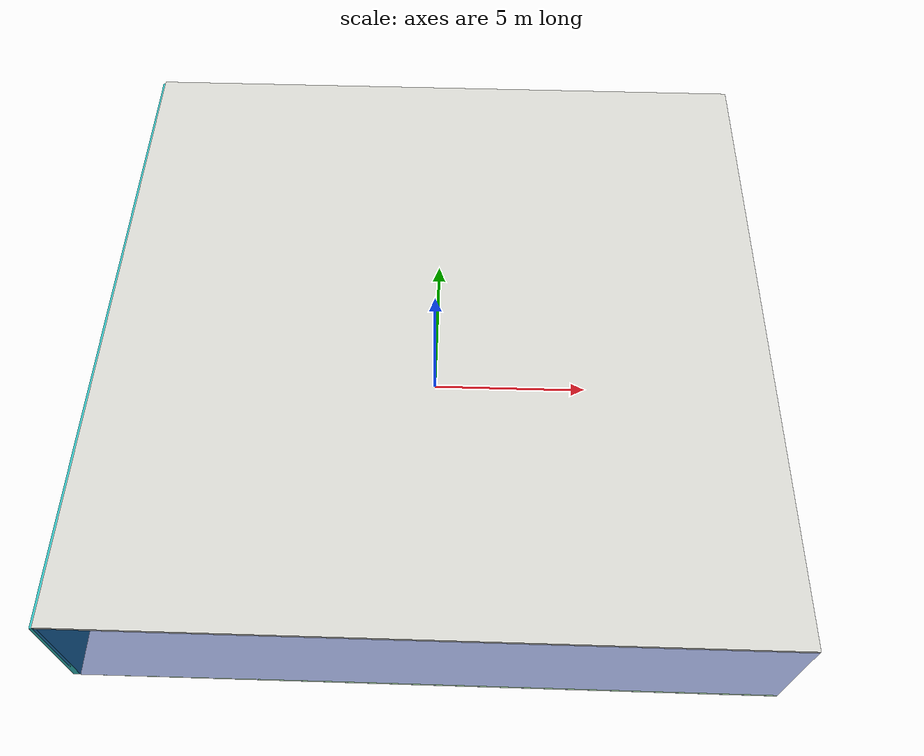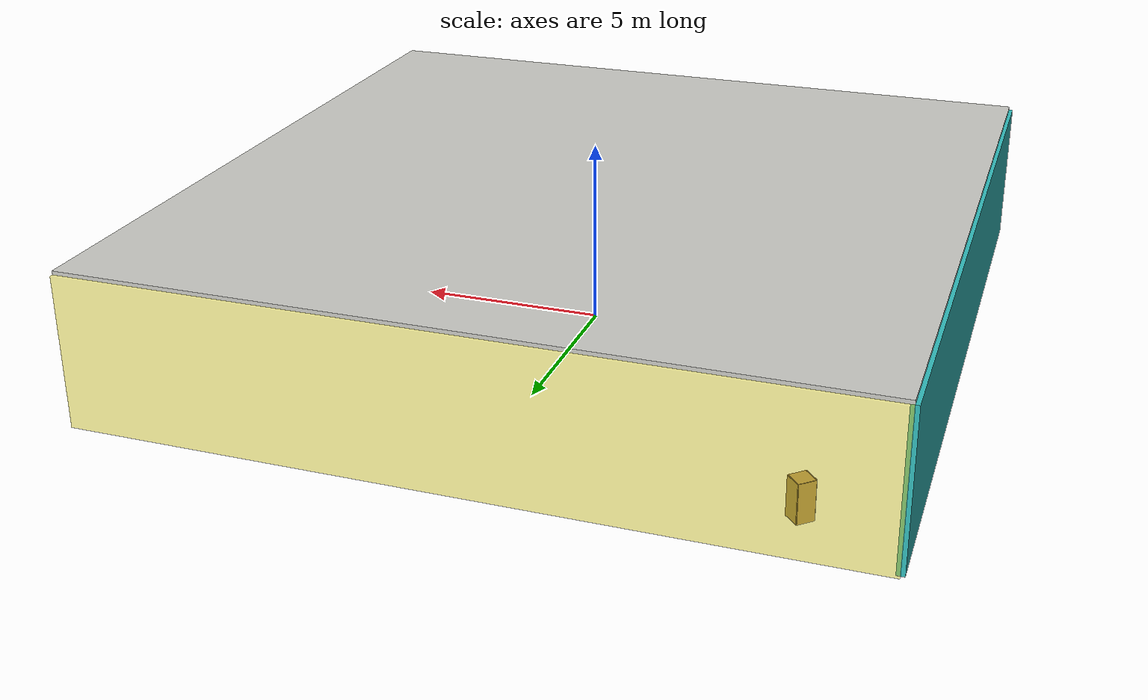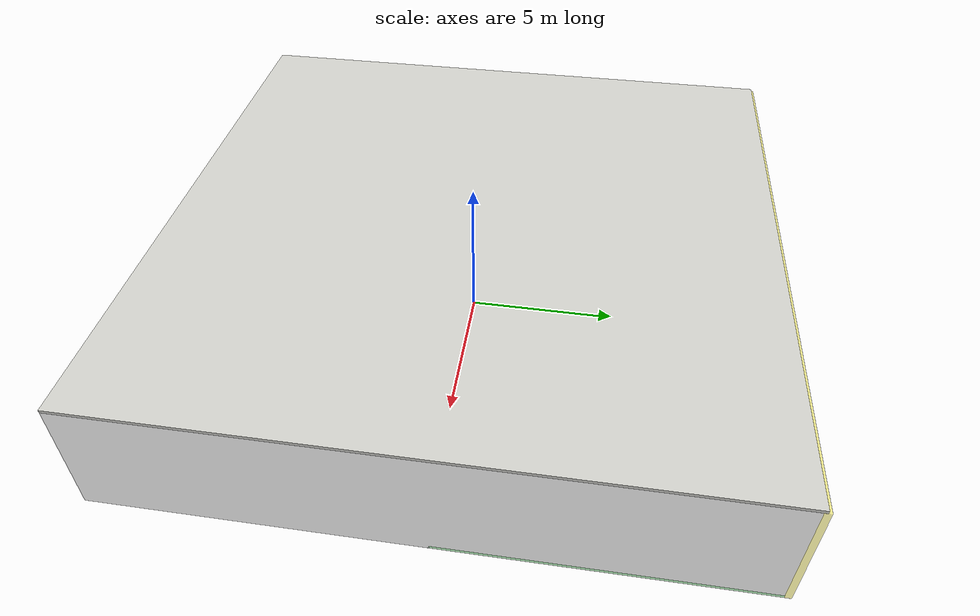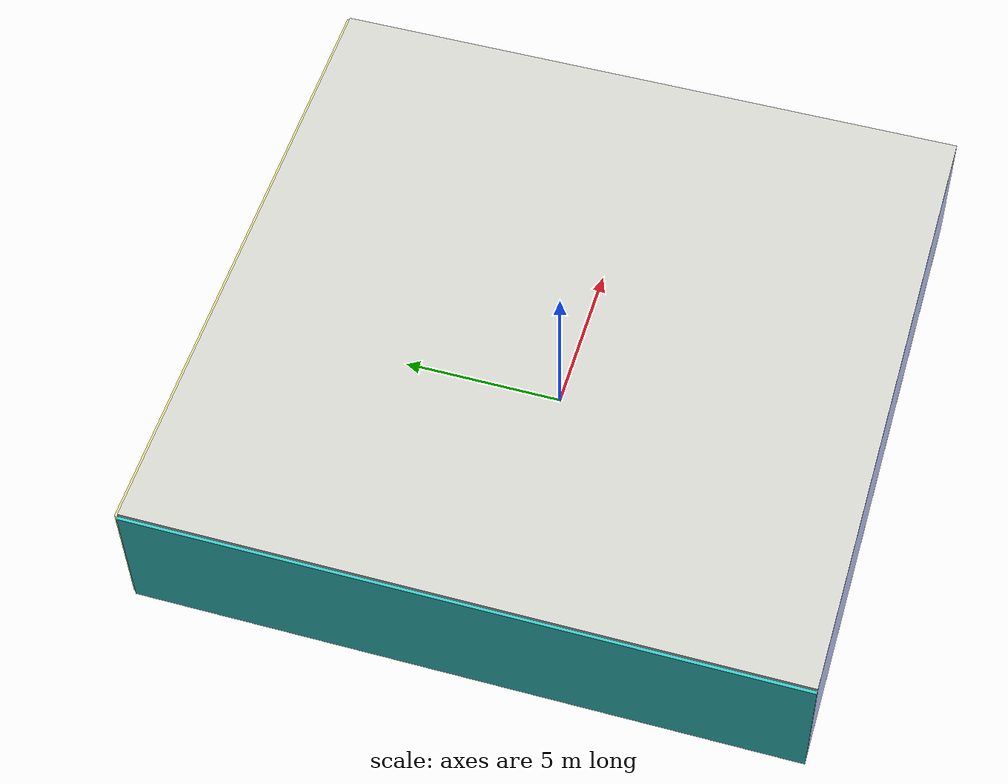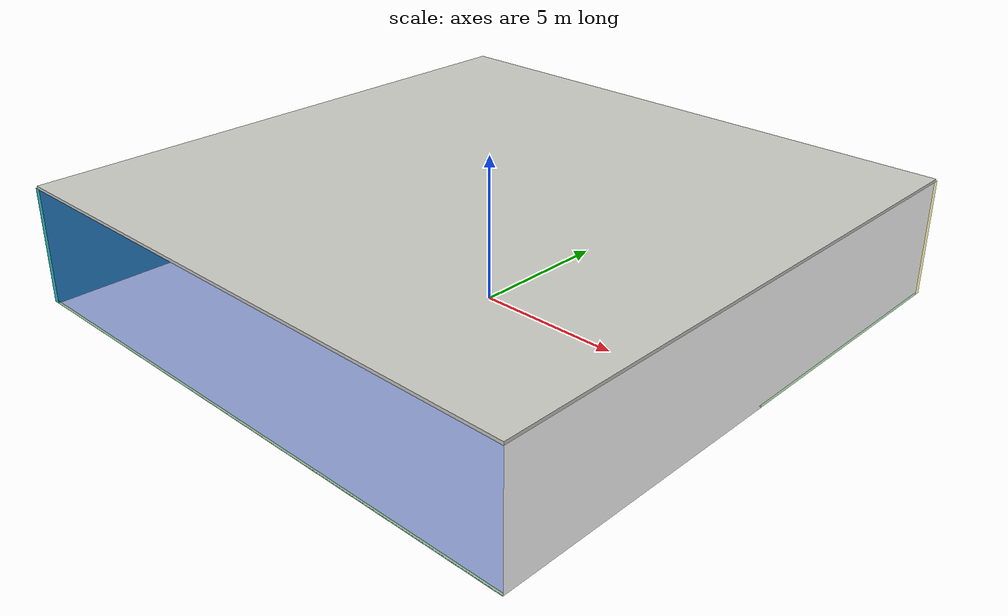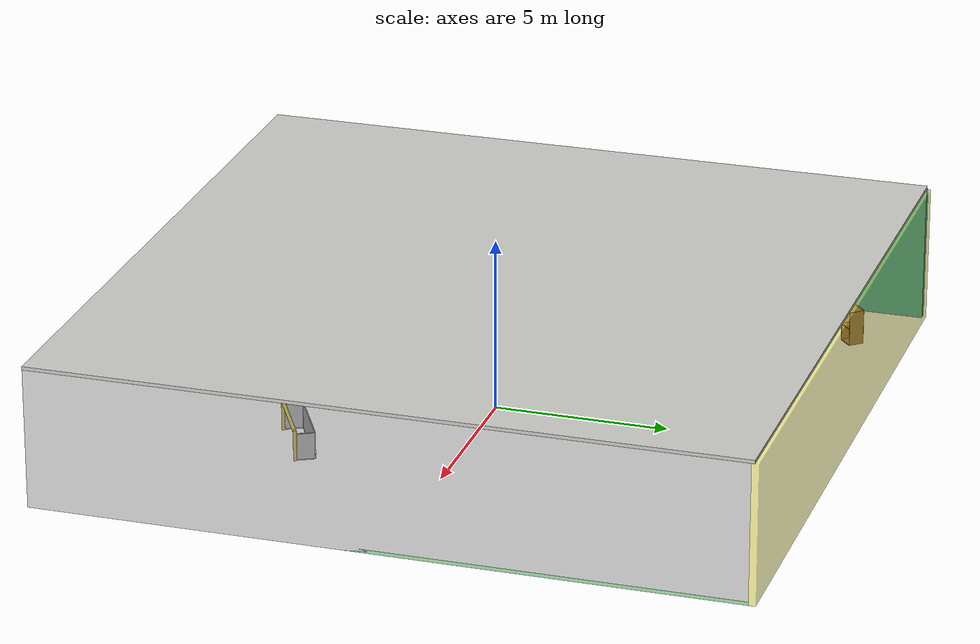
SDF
<sdf version="1.4">
 <world name="default">
  <physics type="ode">
   <max_step_size>0.001</max_step_size>
   <real_time_factor>1</real_time_factor>
   <real_time_update_rate>1000</real_time_update_rate>
   <gravity>0 0 -9.8</gravity>
  </physics>
  <scene><ambient>0.4 0.4 0.4 1</ambient><background>0.7 0.7 0.7 1</background><shadows>1</shadows></scene>
  <model name="Surrounding">
   <static>1</static>
   <link name="Ceiling">
    <collision name="Ceiling_Collision"><geometry><box><size>20 20 0.1</size></box></geometry></collision>
    <visual name="Ceiling_Visual">
     <geometry><box><size>20 20 0.1</size></box></geometry>
     <material>
      <script><uri>file://media/materials/scripts/gazebo.material</uri><name>Gazebo/CeilingTiled</name></script>
     </material>
    </visual>
    <pose>0 0 4.05 0 0 0</pose>
   </link>
   <link name="Wall_South">
    <collision name="Wall_South_Collision">
     <geometry><box><size>20 0 4</size></box></geometry>
     <pose>0 0 2 0 -0 0</pose>
    </collision>
    <visual name="Wall_South_Visual">
     <pose>0 0 2 0 -0 0</pose>
     <geometry><box><size>20 0 4</size></box></geometry>
     <material>
      <script><uri>file://media/materials/scripts/gazebo.material</uri><name>Gazebo/BlueTransparent</name></script>
     </material>
    </visual>
    <velocity_decay><linear>0</linear><angular>0</angular></velocity_decay>
    <pose>0 -10 0 0 -0 0</pose>
   </link>
   <link name="Wall_East">
    <collision name="Wall_21_Collision">
     <geometry><box><size>20 0 4</size></box></geometry>
     <pose>0 0 2 0 -0 0</pose>
    </collision>
    <visual name="Wall_21_Visual">
     <pose>0 0 2 0 -0 0</pose>
     <geometry><box><size>20 0 4</size></box></geometry>
     <material>
      <script><uri>file://media/materials/scripts/gazebo.material</uri><name>Gazebo/GreyTransparent</name></script>
     </material>
    </visual>
    <velocity_decay><linear>0</linear><angular>0</angular></velocity_decay>
    <pose>10 0 0 0 -0 1.5708</pose>
   </link>
   <link name="Wall_North">
    <collision name="Wall_22_Collision">
     <geometry><box><size>20 0.2 4</size></box></geometry>
     <pose>0 0 2 0 -0 0</pose>
    </collision>
    <visual name="Wall_22_Visual">
     <pose>0 0 2 0 -0 0</pose>
     <geometry><box><size>20 0.2 4</size></box></geometry>
     <material>
      <script>
       <uri>file://media/materials/scripts/gazebo.material</uri>
       <name>Gazebo/YellowTransparent</name>
      </script>
     </material>
    </visual>
    <velocity_decay><linear>0</linear><angular>0</angular></velocity_decay>
    <pose>0 10 0 0 -0 0</pose>
   </link>
   <link name="Wall_West">
    <collision name="Wall_23_Collision">
     <geometry><box><size>20 0.2 4</size></box></geometry>
     <pose>0 0 2 0 -0 0</pose>
    </collision>
    <visual name="Wall_23_Visual">
     <pose>0 0 2 0 -0 0</pose>
     <geometry><box><size>20 0.2 4</size></box></geometry>
     <material>
      <script>
       <uri>file://media/materials/scripts/gazebo.material</uri>
       <name>Gazebo/TurquoiseGlowOutline</name>
      </script>
     </material>
    </visual>
    <velocity_decay><linear>0</linear><angular>0</angular></velocity_decay>
    <pose>-10 0 0 0 0 -1.5708</pose>
   </link>
   <link name="Ground_link">
    <collision name="collision">
     <pose>0 0 .05 0 -0 0</pose>
     <geometry><box><size>20 20 0.1</size></box></geometry>
    </collision>
    <visual name="visual">
     <pose>0 0 .05 0 -0 0</pose>
     <geometry><box><size>20 20 0.1</size></box></geometry>
     <material>
      <script><uri>file://media/materials/scripts/gazebo.material</uri><name>Gazebo/GreenTransparent</name></script>
     </material>
    </visual>
   </link>
   <static>1</static>
  </model>
  <spherical_coordinates>
   <surface_model>EARTH_WGS84</surface_model>
   <latitude_deg>0</latitude_deg>
   <longitude_deg>0</longitude_deg>
   <elevation>0</elevation>
   <heading_deg>0</heading_deg>
  </spherical_coordinates>
  <light name="lightball_0" type="diffuse">
   <diffuse>0.8 0.8 0.8 1</diffuse>
   <specular>0.2 0.2 0.2 1</specular>
   <attenuation>
    <range>100</range>
    <constant>0.7</constant>
    <linear>0.01</linear>
    <quadratic>0.001</quadratic>
   </attenuation>
   <direction>-0.5 0.1 -0.9</direction>
   <pose>8.63975364245 -3.07007213791 2.02727961129 0 0 0</pose>
  </light>
  <light name="lightball_1" type="diffuse">
   <diffuse>0.8 0.8 0.8 1</diffuse>
   <specular>0.2 0.2 0.2 1</specular>
   <attenuation>
    <range>100</range>
    <constant>0.7</constant>
    <linear>0.01</linear>
    <quadratic>0.001</quadratic>
   </attenuation>
   <direction>-0.5 0.1 -0.9</direction>
   <pose>-1.1449371877 -6.32613394187 0.682973519415 0 0 0</pose>
  </light>
  <light name="lightball_2" type="diffuse">
   <diffuse>0.8 0.8 0.8 1</diffuse>
   <specular>0.2 0.2 0.2 1</specular>
   <attenuation>
    <range>100</range>
    <constant>0.7</constant>
    <linear>0.01</linear>
    <quadratic>0.001</quadratic>
   </attenuation>
   <direction>-0.5 0.1 -0.9</direction>
   <pose>5.31213526138 6.45872308236 2.3843279771 0 0 0</pose>
  </light>
  <light name="lightball_3" type="diffuse">
   <diffuse>0.8 0.8 0.8 1</diffuse>
   <specular>0.2 0.2 0.2 1</specular>
   <attenuation>
    <range>100</range>
    <constant>0.7</constant>
    <linear>0.01</linear>
    <quadratic>0.001</quadratic>
   </attenuation>
   <direction>-0.5 0.1 -0.9</direction>
   <pose>-8.24808920335 6.5564266009 2.2288902586 0 0 0</pose>
  </light>
  <light name="lightball_4" type="diffuse">
   <diffuse>0.8 0.8 0.8 1</diffuse>
   <specular>0.2 0.2 0.2 1</specular>
   <attenuation>
    <range>100</range>
    <constant>0.7</constant>
    <linear>0.01</linear>
    <quadratic>0.001</quadratic>
   </attenuation>
   <direction>-0.5 0.1 -0.9</direction>
   <pose>-1.33945539228 -9.98628615205 2.9337900816 0 0 0</pose>
  </light>
  <light name="lightball_5" type="diffuse">
   <diffuse>0.8 0.8 0.8 1</diffuse>
   <specular>0.2 0.2 0.2 1</specular>
   <attenuation>
    <range>100</range>
    <constant>0.7</constant>
    <linear>0.01</linear>
    <quadratic>0.001</quadratic>
   </attenuation>
   <direction>-0.5 0.1 -0.9</direction>
   <pose>-7.57529240747 -9.58876881008 1.02718352013 0 0 0</pose>
  </light>
  <light name="lightball_6" type="diffuse">
   <diffuse>0.8 0.8 0.8 1</diffuse>
   <specular>0.2 0.2 0.2 1</specular>
   <attenuation>
    <range>100</range>
    <constant>0.7</constant>
    <linear>0.01</linear>
    <quadratic>0.001</quadratic>
   </attenuation>
   <direction>-0.5 0.1 -0.9</direction>
   <pose>1.3880529543 -9.23160412929 2.80458994997 0 0 0</pose>
  </light>
  <light name="lightball_7" type="diffuse">
   <diffuse>0.8 0.8 0.8 1</diffuse>
   <specular>0.2 0.2 0.2 1</specular>
   <attenuation>
    <range>100</range>
    <constant>0.7</constant>
    <linear>0.01</linear>
    <quadratic>0.001</quadratic>
   </attenuation>
   <direction>-0.5 0.1 -0.9</direction>
   <pose>-6.20858043577 -6.90225446299 1.37599555381 0 0 0</pose>
  </light>
  <include><uri>model://cabinet</uri><pose>-7.57043184823 8.4520362024 0 0 0 2.30526115774</pose></include>
  <include><uri>model://table</uri><pose>-4.62976077274 -4.95839734175 0 0 0 2.58513062681</pose></include>
  <include>
   <uri>model://robocup_3Dsim_goal</uri>
   <pose>4.11337589675 -4.66864952059 0 0 0 2.06804484689</pose>
  </include>
 </world>
</sdf>

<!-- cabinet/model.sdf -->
<sdf version="1.5">
  <model name="cabinet">
    <static>true</static>
    <link name="cabinet_bottom_plate">
      <inertial>
        <pose>0 0 -1 0 0 0</pose>
        <inertia>
          <ixx>2.050000</ixx>
          <ixy>0</ixy>
          <ixz>0</ixz>
          <iyy>2.050000</iyy>
          <iyz>0</iyz>
          <izz>2.050000</izz>
        </inertia>
        <mass>25.000000</mass>
      </inertial>
      <collision name="cabinet_bottom_plate_geom">
        <pose>0 0 0.010000 0 0 0</pose>
        <geometry>
          <box>
            <size>0.450000 0.450000 0.020000</size>
          </box>
        </geometry>
      </collision>
      <visual name="cabinet_bottom_plate_geom_visual">
        <pose>0 0 0.010000 0 0 0</pose>
        <geometry>
          <box>
            <size>0.450000 0.450000 0.020000</size>
          </box>
        </geometry>
        <material>
          <script>
            <uri>model://media/materials/scripts/gazebo.material</uri>
            <name>Gazebo/Wood</name>
          </script>
        </material>
      </visual>
      <collision name="cabinet_bottom_plate_geom_cabinet_back_plate">
        <pose>0.235000 0 0.510000 0 0 0</pose>
        <geometry>
          <box>
            <size>0.020000 0.450000 1.020000</size>
          </box>
        </geometry>
      </collision>
      <visual name="cabinet_bottom_plate_geom_cabinet_back_plate_visual">
        <pose>0.235000 0 0.510000 0 0 0</pose>
        <geometry>
          <box>
            <size>0.020000 0.450000 1.020000</size>
          </box>
        </geometry>
        <material>
          <script>
            <uri>model://media/materials/scripts/gazebo.material</uri>
            <name>Gazebo/Wood</name>
          </script>
        </material>
      </visual>
      <collision name="cabinet_bottom_plate_geom_cabinet_left_plate">
        <pose>0 0.235000 0.510000 0 0 0</pose>
        <geometry>
          <box>
            <size>0.450000 0.020000 1.020000</size>
          </box>
        </geometry>
      </collision>
      <visual name="cabinet_bottom_plate_geom_cabinet_left_plate_visual">
        <pose>0 0.235000 0.510000 0 0 0</pose>
        <geometry>
          <box>
            <size>0.450000 0.020000 1.020000</size>
          </box>
        </geometry>
        <material>
          <script>
            <uri>model://media/materials/scripts/gazebo.material</uri>
            <name>Gazebo/Wood</name>
          </script>
        </material>
      </visual>
      <collision name="cabinet_bottom_plate_geom_cabinet_middle_plate">
        <pose>0 0 0.510000 0 0 0</pose>
        <geometry>
          <box>
            <size>0.450000 0.450000 0.020000</size>
          </box>
        </geometry>
      </collision>
      <visual name="cabinet_bottom_plate_geom_cabinet_middle_plate_visual">
        <pose>0 0 0.510000 0 0 0</pose>
        <geometry>
          <box>
            <size>0.450000 0.450000 0.020000</size>
          </box>
        </geometry>
        <material>
          <script>
            <uri>model://media/materials/scripts/gazebo.material</uri>
            <name>Gazebo/Wood</name>
          </script>
        </material>
      </visual>
      <collision name="cabinet_bottom_plate_geom_cabinet_right_plate">
        <pose>0 -0.235000 0.510000 0 0 0</pose>
        <geometry>
          <box>
            <size>0.450000 0.020000 1.020000</size>
          </box>
        </geometry>
      </collision>
      <visual name="cabinet_bottom_plate_geom_cabinet_right_plate_visual">
        <pose>0 -0.235000 0.510000 0 0 0</pose>
        <geometry>
          <box>
            <size>0.450000 0.020000 1.020000</size>
          </box>
        </geometry>
        <material>
          <script>
            <uri>model://media/materials/scripts/gazebo.material</uri>
            <name>Gazebo/Wood</name>
          </script>
        </material>
      </visual>
      <collision name="cabinet_bottom_plate_geom_cabinet_top_plate">
        <pose>0 0 1.010000 0 0 0</pose>
        <geometry>
          <box>
            <size>0.450000 0.450000 0.020000</size>
          </box>
        </geometry>
      </collision>
      <visual name="cabinet_bottom_plate_geom_cabinet_top_plate_visual">
        <pose>0 0 1.010000 0 0 0</pose>
        <geometry>
          <box>
            <size>0.450000 0.450000 0.020000</size>
          </box>
        </geometry>
        <material>
          <script>
            <uri>model://media/materials/scripts/gazebo.material</uri>
            <name>Gazebo/Wood</name>
          </script>
        </material>
      </visual>
    </link>
  </model>
</sdf>

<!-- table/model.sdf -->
<sdf version="1.5">
  <model name="table">
    <static>true</static>
    <link name="link">
      <collision name="surface">
        <pose>0 0 1.0 0 0 0</pose>
        <geometry>
          <box>
            <size>1.5 0.8 0.03</size>
          </box>
        </geometry>
        <surface>
          <friction>
            <ode>
              <mu>0.6</mu>
              <mu2>0.6</mu2>
            </ode>
          </friction>
        </surface>
      </collision>
      <visual name="visual1">
        <pose>0 0 1.0 0 0 0</pose>
        <geometry>
          <box>
            <size>1.5 0.8 0.03</size>
          </box>
        </geometry>
        <material>
          <script>
            <uri>model://media/materials/scripts/gazebo.material</uri>
            <name>Gazebo/Wood</name>
          </script>
        </material>
      </visual>
      <collision name="front_left_leg">
        <pose>0.68 0.38 0.5 0 0 0</pose>
        <geometry>
          <cylinder>
            <radius>0.02</radius>
            <length>1.0</length>
          </cylinder>
        </geometry>
      </collision>
      <visual name="front_left_leg">
        <pose>0.68 0.38 0.5 0 0 0</pose>
        <geometry>
          <cylinder>
            <radius>0.02</radius>
            <length>1.0</length>
          </cylinder>
        </geometry>
        <material>
          <script>
            <uri>model://media/materials/scripts/gazebo.material</uri>
            <name>Gazebo/Grey</name>
          </script>
        </material>
      </visual>
      <collision name="front_right_leg">
        <pose>0.68 -0.38 0.5 0 0 0</pose>
        <geometry>
          <cylinder>
            <radius>0.02</radius>
            <length>1.0</length>
          </cylinder>
        </geometry>
      </collision>
      <visual name="front_right_leg">
        <pose>0.68 -0.38 0.5 0 0 0</pose>
        <geometry>
          <cylinder>
            <radius>0.02</radius>
            <length>1.0</length>
          </cylinder>
        </geometry>
        <material>
          <script>
            <uri>model://media/materials/scripts/gazebo.material</uri>
            <name>Gazebo/Grey</name>
          </script>
        </material>
      </visual>
      <collision name="back_right_leg">
        <pose>-0.68 -0.38 0.5 0 0 0</pose>
        <geometry>
          <cylinder>
            <radius>0.02</radius>
            <length>1.0</length>
          </cylinder>
        </geometry>
      </collision>
      <visual name="back_right_leg">
        <pose>-0.68 -0.38 0.5 0 0 0</pose>
        <geometry>
          <cylinder>
            <radius>0.02</radius>
            <length>1.0</length>
          </cylinder>
        </geometry>
        <material>
          <script>
            <uri>model://media/materials/scripts/gazebo.material</uri>
            <name>Gazebo/Grey</name>
          </script>
        </material>
      </visual>
      <collision name="back_left_leg">
        <pose>-0.68 0.38 0.5 0 0 0</pose>
        <geometry>
          <cylinder>
            <radius>0.02</radius>
            <length>1.0</length>
          </cylinder>
        </geometry>
      </collision>
      <visual name="back_left_leg">
        <pose>-0.68 0.38 0.5 0 0 0</pose>
        <geometry>
          <cylinder>
            <radius>0.02</radius>
            <length>1.0</length>
          </cylinder>
        </geometry>
        <material>
          <script>
            <uri>model://media/materials/scripts/gazebo.material</uri>
            <name>Gazebo/Grey</name>
          </script>
        </material>
      </visual>
    </link>
  </model>
</sdf>

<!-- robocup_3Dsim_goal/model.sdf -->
<sdf version="1.5">
  <model name="robocup_3d_goal">
    <static>true</static>
    <link name="left_post">
      <pose>0 1.05 0.45 0 0 0</pose>
      <collision name="collision">
        <geometry>
          <cylinder>
            <radius>0.05</radius>
            <length>0.9</length>
          </cylinder>
        </geometry>
      </collision>
      <visual name="visual">
        <geometry>
          <cylinder>
            <radius>0.05</radius>
            <length>0.9</length>
          </cylinder>
        </geometry>
        <material>
          <script>
            <uri>file://media/materials/scripts/gazebo.material</uri>
            <name>Gazebo/ZincYellow</name>
          </script>
        </material>
      </visual>
    </link>
    <link name="left_support_horiz_lower">
      <pose>0.30 1.05 0.01 0 0 0</pose>
      <collision name="collision">
        <geometry>
          <box>
            <size>0.50 0.02 0.02</size>
          </box>
        </geometry>
      </collision>
      <visual name="visual">
        <geometry>
          <box>
            <size>0.50 0.02 0.02</size>
          </box>
        </geometry>
        <material>
          <script>
            <uri>file://media/materials/scripts/gazebo.material</uri>
            <name>Gazebo/White</name>
          </script>
        </material>
      </visual>
    </link>
    <link name="left_support_horiz_upper">
      <pose>0.30 1.05 0.79 0 0 0</pose>
      <collision name="collision">
        <geometry>
          <box>
            <size>0.50 0.02 0.02</size>
          </box>
        </geometry>
      </collision>
      <visual name="visual">
        <geometry>
          <box>
            <size>0.50 0.02 0.02</size>
          </box>
        </geometry>
        <material>
          <script>
            <uri>file://media/materials/scripts/gazebo.material</uri>
            <name>Gazebo/White</name>
          </script>
        </material>
      </visual>
    </link>
    <link name="left_support_vertical">
      <pose>0.56 1.05 0.4 0 1.5708 0</pose>
      <collision name="collision">
        <geometry>
          <box>
            <size>0.80 0.02 0.02</size>
          </box>
        </geometry>
      </collision>
      <visual name="visual">
        <geometry>
          <box>
            <size>0.80 0.02 0.02</size>
          </box>
        </geometry>
        <material>
          <script>
            <uri>file://media/materials/scripts/gazebo.material</uri>
            <name>Gazebo/White</name>
          </script>
        </material>
      </visual>
    </link>
    <link name="right_support_horiz_lower">
      <pose>0.30 -1.05 0.01 0 0 0</pose>
      <collision name="collision">
        <geometry>
          <box>
            <size>0.50 0.02 0.02</size>
          </box>
        </geometry>
      </collision>
      <visual name="visual">
        <geometry>
          <box>
            <size>0.50 0.02 0.02</size>
          </box>
        </geometry>
        <material>
          <script>
            <uri>file://media/materials/scripts/gazebo.material</uri>
            <name>Gazebo/White</name>
          </script>
        </material>
      </visual>
    </link>
    <link name="right_support_horiz_upper">
      <pose>0.30 -1.05 0.79 0 0 0</pose>
      <collision name="collision">
        <geometry>
          <box>
            <size>0.50 0.02 0.02</size>
          </box>
        </geometry>
      </collision>
      <visual name="visual">
        <geometry>
          <box>
            <size>0.50 0.02 0.02</size>
          </box>
        </geometry>
        <material>
          <script>
            <uri>file://media/materials/scripts/gazebo.material</uri>
            <name>Gazebo/White</name>
          </script>
        </material>
      </visual>
    </link>
    <link name="right_support_vertical">
      <pose>0.56 -1.05 0.4 0 1.5708 0</pose>
      <collision name="collision">
        <geometry>
          <box>
            <size>0.80 0.02 0.02</size>
          </box>
        </geometry>
      </collision>
      <visual name="visual">
        <geometry>
          <box>
            <size>0.80 0.02 0.02</size>
          </box>
        </geometry>
        <material>
          <script>
            <uri>file://media/materials/scripts/gazebo.material</uri>
            <name>Gazebo/White</name>
          </script>
        </material>
      </visual>
    </link>
    <link name="center_support_horiz_lower">
      <pose>0.56 0 0.01 0 1.5708 0</pose>
      <collision name="collision">
        <geometry>
          <box>
            <size>0.02 2.08 0.02</size>
          </box>
        </geometry>
      </collision>
      <visual name="visual">
        <geometry>
          <box>
            <size>0.02 2.08 0.02</size>
          </box>
        </geometry>
        <material>
          <script>
            <uri>file://media/materials/scripts/gazebo.material</uri>
            <name>Gazebo/White</name>
          </script>
        </material>
      </visual>
    </link>
    <link name="center_support_horiz_upper">
      <pose>0.56 0 0.79 0 1.5708 0</pose>
      <collision name="collision">
        <geometry>
          <box>
            <size>0.02 2.08 0.02</size>
          </box>
        </geometry>
      </collision>
      <visual name="visual">
        <geometry>
          <box>
            <size>0.02 2.08 0.02</size>
          </box>
        </geometry>
        <material>
          <script>
            <uri>file://media/materials/scripts/gazebo.material</uri>
            <name>Gazebo/White</name>
          </script>
        </material>
      </visual>
    </link>
    <link name="right_post">
      <pose>0 -1.05 0.45 0 0 0</pose>
      <collision name="collision">
        <geometry>
          <cylinder>
            <radius>0.05</radius>
            <length>0.9</length>
          </cylinder>
        </geometry>
      </collision>
      <visual name="visual">
        <geometry>
          <cylinder>
            <radius>0.05</radius>
            <length>0.9</length>
          </cylinder>
        </geometry>
        <material>
          <script>
            <uri>file://media/materials/scripts/gazebo.material</uri>
            <name>Gazebo/ZincYellow</name>
          </script>
        </material>
      </visual>
    </link>
    <link name="crossbar">
      <pose>0 0 0.85 1.57 1.57 0</pose>
      <collision name="collision">
        <geometry>
          <cylinder>
            <radius>0.05</radius>
            <length>2.0</length>
          </cylinder>
        </geometry>
      </collision>
      <visual name="visual">
        <geometry>
          <cylinder>
            <radius>0.05</radius>
            <length>2.0</length>
          </cylinder>
        </geometry>
        <material>
          <script>
            <uri>file://media/materials/scripts/gazebo.material</uri>
            <name>Gazebo/ZincYellow</name>
          </script>
        </material>
      </visual>
    </link>
    <link name="center_net">
      <pose>0.56 0 0.40 0 0 0</pose>
      <collision name="collision">
        <geometry>
          <box>
            <size>0.01 2.1 0.80</size>
          </box>
        </geometry>
      </collision>
      <visual name="visual">
        <geometry>
          <box>
            <size>0.01 2.1 0.80</size>
          </box>
        </geometry>
        <material>
          <script>
            <uri>model://../model_source/models/robocup09_spl_field/materials/scripts/</uri>
            <uri>model://../model_source/models/robocup09_spl_field/materials/textures/</uri>
            <name>RoboCup/Net</name>
          </script>
        </material>
      </visual>
    </link>
    <link name="left_net">
      <pose>0.30 1.05 0.40 0 0 0</pose>
      <collision name="collision">
        <geometry>
          <box>
            <size>0.50 0.01 0.76</size>
          </box>
        </geometry>
      </collision>
      <visual name="visual">
        <geometry>
          <box>
            <size>0.50 0.01 0.76</size>
          </box>
        </geometry>
        <material>
          <script>
            <uri>model://../model_source/models/robocup09_spl_field/materials/scripts/</uri>
            <uri>model://../model_source/models/robocup09_spl_field/materials/textures/</uri>
            <name>RoboCup/Net</name>
          </script>
        </material>
      </visual>
    </link>
    <link name="right_net">
      <pose>0.30 -1.05 0.40 0 0 0</pose>
      <collision name="collision">
        <geometry>
          <box>
            <size>0.50 0.01 0.76</size>
          </box>
        </geometry>
      </collision>
      <visual name="visual">
        <geometry>
          <box>
            <size>0.50 0.01 0.76</size>
          </box>
        </geometry>
        <material>
          <script>
            <uri>model://../model_source/models/robocup09_spl_field/materials/scripts/</uri>
            <uri>model://../model_source/models/robocup09_spl_field/materials/textures/</uri>
            <name>RoboCup/Net</name>
          </script>
        </material>
      </visual>
    </link>
  </model>
</sdf>
